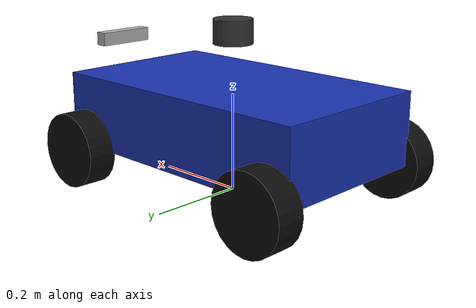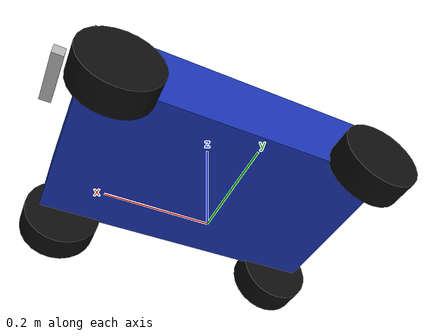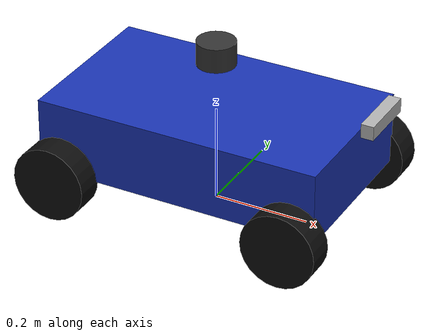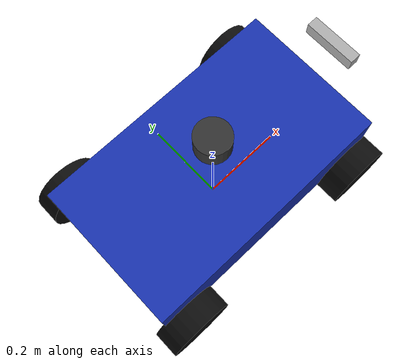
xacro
<?xml version="1.0"?>
<robot xmlns:xacro="http://www.ros.org/wiki/xacro" name="amr_4wd_ackermann">

  <xacro:include filename="$(find amr_description)/urdf/amr_macros.xacro"/>

  <xacro:property name="wheelbase"     value="0.500"/>   <!-- jarak as roda depan-belakang -->
  <xacro:property name="track_width"   value="0.400"/>   <!-- jarak roda kiri-kanan -->
  <xacro:property name="wheel_radius"  value="0.0775"/>  <!-- 155 mm / 2 (diameter ban+velg) -->
  <xacro:property name="wheel_width"   value="0.060"/>   <!-- lebar ban -->

  <xacro:property name="chassis_l"     value="0.600"/>
  <xacro:property name="chassis_w"     value="0.350"/>
  <xacro:property name="chassis_h"     value="0.150"/>
  <xacro:property name="chassis_mass"  value="6.0"/>
  <xacro:property name="wheel_mass"    value="0.30"/>

  <!-- Sensor positions relatif terhadap base_link (pusat geometri robot, di tengah wheelbase, z=0 di lantai) -->
  <xacro:property name="lidar_z"       value="0.250"/>   <!-- tinggi LiDAR dari lantai -->
  <xacro:property name="camera_x"      value="0.350"/>   <!-- jarak kamera ke depan -->
  <xacro:property name="camera_z"      value="0.200"/>   <!-- tinggi kamera dari lantai -->

  <!-- ================================================================
       ROOT LINKS: base_footprint dan base_link
       ================================================================ -->
  <link name="base_footprint"/>

  <link name="base_link">
    <inertial>
      <mass value="0.001"/>
      <xacro:box_inertia m="0.001" x="0.01" y="0.01" z="0.01"/>
    </inertial>
  </link>

  <!-- base_footprint -> base_link: angkat sebesar wheel_radius supaya base_link di sumbu roda -->
  <joint name="base_footprint_joint" type="fixed">
    <parent link="base_footprint"/>
    <child  link="base_link"/>
    <origin xyz="0 0 ${wheel_radius}" rpy="0 0 0"/>
  </joint>

  <!-- ================================================================
       CHASSIS (body fisik robot)
       ================================================================ -->
  <link name="chassis">
    <visual>
      <origin xyz="0 0 ${chassis_h/2}" rpy="0 0 0"/>
      <geometry>
        <box size="${chassis_l} ${chassis_w} ${chassis_h}"/>
      </geometry>
      <material name="blue">
        <color rgba="0.1 0.2 0.7 1.0"/>
      </material>
    </visual>
    <collision>
      <origin xyz="0 0 ${chassis_h/2}" rpy="0 0 0"/>
      <geometry>
        <box size="${chassis_l} ${chassis_w} ${chassis_h}"/>
      </geometry>
    </collision>
    <inertial>
      <origin xyz="0 0 ${chassis_h/2}" rpy="0 0 0"/>
      <mass value="${chassis_mass}"/>
      <xacro:box_inertia m="${chassis_mass}"
                         x="${chassis_l}"
                         y="${chassis_w}"
                         z="${chassis_h}"/>
    </inertial>
  </link>

  <joint name="chassis_joint" type="fixed">
    <parent link="base_link"/>
    <child  link="chassis"/>
    <origin xyz="0 0 0" rpy="0 0 0"/>
  </joint>

  <!-- ================================================================
       REAR WHEELS (no steering, axis Y)
       ================================================================ -->
  <xacro:wheel prefix="rear_left"
               parent="base_link"
               xyz="${-wheelbase/2} ${ track_width/2} 0"
               mass="${wheel_mass}"
               radius="${wheel_radius}"
               width="${wheel_width}"/>

  <xacro:wheel prefix="rear_right"
               parent="base_link"
               xyz="${-wheelbase/2} ${-track_width/2} 0"
               mass="${wheel_mass}"
               radius="${wheel_radius}"
               width="${wheel_width}"/>

  <xacro:steering_link prefix="front_left"
                       parent="base_link"
                       xyz="${ wheelbase/2} ${ track_width/2} 0"/>

  <xacro:steering_link prefix="front_right"
                       parent="base_link"
                       xyz="${ wheelbase/2} ${-track_width/2} 0"/>

  <!-- Front wheels mounted on steering links (origin di steering link = 0) -->
  <xacro:wheel prefix="front_left"
               parent="front_left_steering_link"
               xyz="0 0 0"
               mass="${wheel_mass}"
               radius="${wheel_radius}"
               width="${wheel_width}"/>

  <xacro:wheel prefix="front_right"
               parent="front_right_steering_link"
               xyz="0 0 0"
               mass="${wheel_mass}"
               radius="${wheel_radius}"
               width="${wheel_width}"/>

  <link name="laser_frame">
    <visual>
      <geometry>
        <cylinder radius="0.04" length="0.05"/>
      </geometry>
      <material name="dark_gray">
        <color rgba="0.2 0.2 0.2 1.0"/>
      </material>
    </visual>
    <inertial>
      <mass value="0.17"/>
      <xacro:cylinder_inertia m="0.17" r="0.04" h="0.05"/>
    </inertial>
  </link>

  <joint name="laser_joint" type="fixed">
    <parent link="base_link"/>
    <child  link="laser_frame"/>
    <origin xyz="0 0 ${lidar_z}" rpy="0 0 0"/>
  </joint>

  <!-- ================================================================
       CAMERA: Intel RealSense D455
       ================================================================ -->
  <link name="camera_link">
    <visual>
      <geometry>
        <box size="0.026 0.124 0.029"/>
      </geometry>
      <material name="silver">
        <color rgba="0.7 0.7 0.7 1.0"/>
      </material>
    </visual>
    <inertial>
      <mass value="0.072"/>
      <xacro:box_inertia m="0.072" x="0.026" y="0.124" z="0.029"/>
    </inertial>
  </link>

  <joint name="camera_joint" type="fixed">
    <parent link="base_link"/>
    <child  link="camera_link"/>
    <origin xyz="${camera_x} 0 ${camera_z}" rpy="0 0 0"/>
  </joint>

  <!-- Optical frames (sesuai konvensi REP-103: x kanan, y bawah, z depan) -->
  <link name="color_optical_frame"/>
  <joint name="color_optical_joint" type="fixed">
    <parent link="camera_link"/>
    <child  link="color_optical_frame"/>
    <origin xyz="0 0 0" rpy="${-pi/2} 0 ${-pi/2}"/>
  </joint>

  <link name="depth_optical_frame"/>
  <joint name="depth_optical_joint" type="fixed">
    <parent link="camera_link"/>
    <child  link="depth_optical_frame"/>
    <origin xyz="0 0 0" rpy="${-pi/2} 0 ${-pi/2}"/>
  </joint>

</robot>

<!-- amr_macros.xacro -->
<!--
  AMR - Reusable Macros
  Author: Muhammad Al Azhar Faradis (NRP 2040241017)
  ITS Surabaya - DTEO - Sarjana Terapan Teknologi Rekayasa Otomasi
-->
<robot xmlns:xacro="http://www.ros.org/wiki/xacro">

  <xacro:include filename="$(find amr_description)/urdf/amr_inertia.xacro"/>

  <xacro:macro name="wheel" params="prefix parent xyz mass radius width">
    <link name="${prefix}_wheel">
      <visual>
        <origin xyz="0 0 0" rpy="${pi/2} 0 0"/>
        <geometry><cylinder radius="${radius}" length="${width}"/></geometry>
        <material name="black"><color rgba="0.05 0.05 0.05 1.0"/></material>
      </visual>
      <collision>
        <origin xyz="0 0 0" rpy="${pi/2} 0 0"/>
        <geometry><cylinder radius="${radius}" length="${width}"/></geometry>
      </collision>
      <inertial>
        <mass value="${mass}"/>
        <origin xyz="0 0 0" rpy="${pi/2} 0 0"/>
        <xacro:cylinder_inertia m="${mass}" r="${radius}" h="${width}"/>
      </inertial>
    </link>

    <joint name="${prefix}_wheel_joint" type="continuous">
      <parent link="${parent}"/>
      <child link="${prefix}_wheel"/>
      <origin xyz="${xyz}" rpy="0 0 0"/>
      <axis xyz="0 1 0"/>
      <dynamics damping="0.05" friction="0.01"/>
    </joint>

    <gazebo reference="${prefix}_wheel">
      <mu1>1.2</mu1>
      <mu2>1.0</mu2>
      <kp>1e7</kp>
      <kd>1.0</kd>
      <minDepth>0.001</minDepth>
      <maxVel>0.1</maxVel>
      <material>Gazebo/FlatBlack</material>
    </gazebo>
  </xacro:macro>

  <xacro:macro name="steering_link" params="prefix parent xyz">
    <link name="${prefix}_steering_link">
      <visual>
        <geometry><box size="0.02 0.02 0.05"/></geometry>
        <material name="orange"><color rgba="1.0 0.5 0.0 1.0"/></material>
      </visual>
      <collision>
        <geometry><box size="0.02 0.02 0.05"/></geometry>
      </collision>
      <inertial>
        <mass value="0.05"/>
        <xacro:box_inertia m="0.05" x="0.02" y="0.02" z="0.05"/>
      </inertial>
    </link>

    <joint name="${prefix}_steering_joint" type="revolute">
      <parent link="${parent}"/>
      <child link="${prefix}_steering_link"/>
      <origin xyz="${xyz}" rpy="0 0 0"/>
      <axis xyz="0 0 1"/>
      <limit lower="-0.785" upper="0.785" effort="5.0" velocity="3.0"/>
      <dynamics damping="0.5" friction="0.05"/>
    </joint>
  </xacro:macro>

</robot>

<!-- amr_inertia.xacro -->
<robot xmlns:xacro="http://www.ros.org/wiki/xacro">

  <xacro:macro name="cylinder_inertia" params="m r h">
    <inertia ixx="${m*(3*r*r+h*h)/12.0}" ixy="0.0" ixz="0.0"
             iyy="${m*(3*r*r+h*h)/12.0}" iyz="0.0"
             izz="${m*r*r/2.0}"/>
  </xacro:macro>

  <xacro:macro name="box_inertia" params="m x y z">
    <inertia ixx="${m*(y*y+z*z)/12.0}" ixy="0.0" ixz="0.0"
             iyy="${m*(x*x+z*z)/12.0}" iyz="0.0"
             izz="${m*(x*x+y*y)/12.0}"/>
  </xacro:macro>

  <xacro:macro name="sphere_inertia" params="m r">
    <inertia ixx="${2.0*m*r*r/5.0}" ixy="0.0" ixz="0.0"
             iyy="${2.0*m*r*r/5.0}" iyz="0.0"
             izz="${2.0*m*r*r/5.0}"/>
  </xacro:macro>

</robot>
